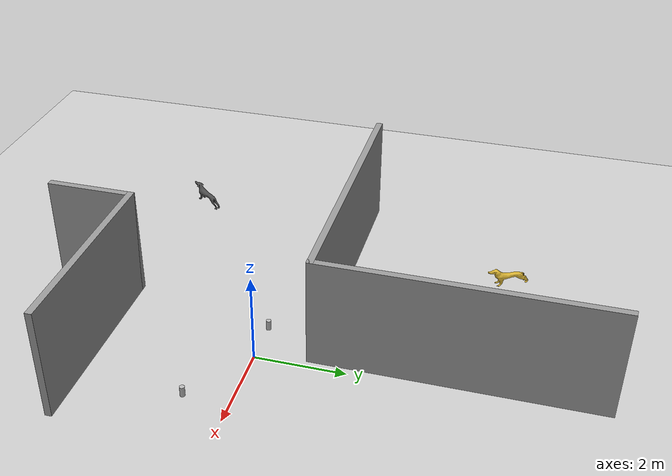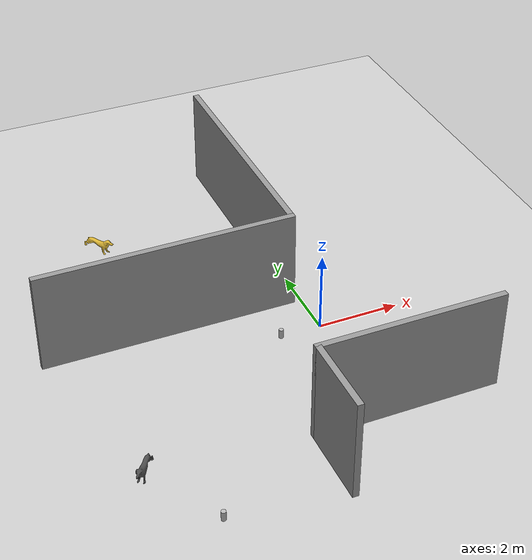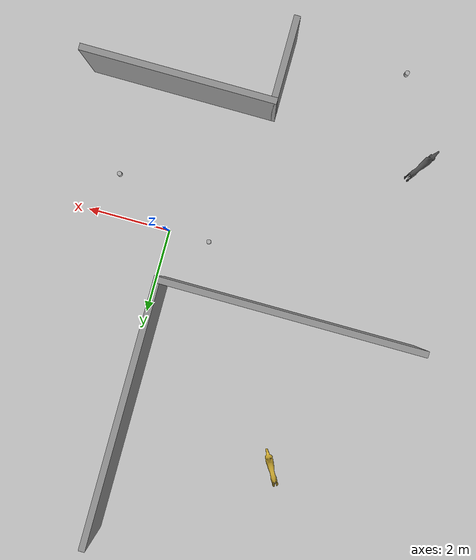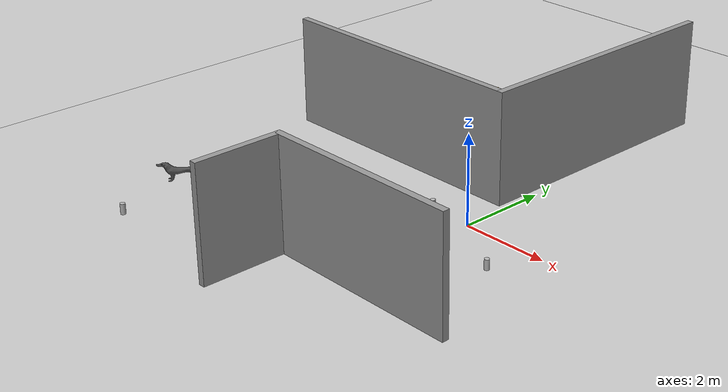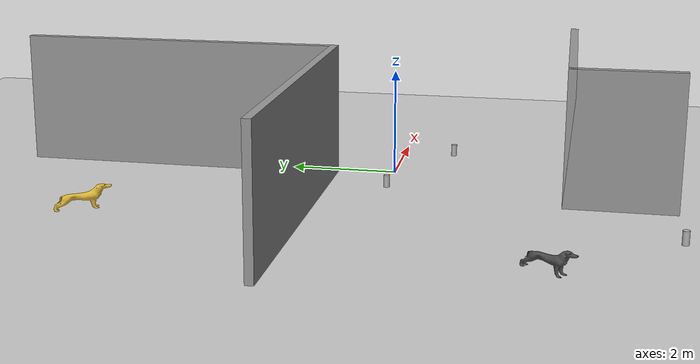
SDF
<sdf version="1.6">
 <world name="demo_world">
  <light name="sun" type="directional">
   <pose>0 0 10 0 -0 0</pose>
   <diffuse>0.8 0.8 0.8 1</diffuse>
   <specular>0.2 0.2 0.2 1</specular>
   <attenuation>
    <range>1000</range>
    <constant>0.9</constant>
    <linear>0.01</linear>
    <quadratic>0.001</quadratic>
   </attenuation>
   <direction>-0.5 0.1 -0.9</direction>
  </light>
  <model name="ground_plane">
   <static>1</static>
   <link name="link">
    <collision name="collision">
     <geometry><plane><normal>0 0 1</normal><size>100 100</size></plane></geometry>
     <surface>
      <contact><collide_bitmask>65535</collide_bitmask></contact>
      <friction><ode><mu>100</mu><mu2>50</mu2></ode></friction>
     </surface>
    </collision>
    <visual name="visual">
     <cast_shadows>0</cast_shadows>
     <geometry><plane><normal>0 0 1</normal><size>100 100</size></plane></geometry>
     <material>
      <script><uri>file://media/materials/scripts/gazebo.material</uri><name>Gazebo/Grey</name></script>
     </material>
    </visual>
   </link>
  </model>
  <gravity>0 0 -9.8</gravity>
  <magnetic_field>6e-06 2.3e-05 -4.2e-05</magnetic_field>
  <atmosphere type="adiabatic"/>
  <physics name="default_physics" default="0" type="ode">
   <max_step_size>0.001</max_step_size>
   <real_time_factor>1</real_time_factor>
   <real_time_update_rate>1000</real_time_update_rate>
  </physics>
  <scene><ambient>0.4 0.4 0.4 1</ambient><background>0.7 0.7 0.7 1</background><shadows>1</shadows></scene>
  <audio><device>default</device></audio>
  <spherical_coordinates>
   <surface_model>EARTH_WGS84</surface_model>
   <latitude_deg>0</latitude_deg>
   <longitude_deg>0</longitude_deg>
   <elevation>0</elevation>
   <heading_deg>90</heading_deg>
  </spherical_coordinates>
  <model name="beer">
   <link name="link">
    <pose>0 0 0.115 0 -0 0</pose>
    <inertial>
     <mass>0.39</mass>
     <inertia><ixx>0.00058</ixx><ixy>0</ixy><ixz>0</ixz><iyy>0.00058</iyy><iyz>0</iyz><izz>0.00019</izz></inertia>
    </inertial>
    <collision name="collision">
     <geometry><cylinder><radius>0.055</radius><length>0.23</length></cylinder></geometry>
    </collision>
    <visual name="visual">
     <geometry><cylinder><radius>0.055</radius><length>0.23</length></cylinder></geometry>
     <material>
      <script>
       <uri>model://beer/materials/scripts</uri>
       <uri>model://beer/materials/textures</uri>
       <name>Beer/Diffuse</name>
      </script>
     </material>
    </visual>
   </link>
   <pose>-4.47 -5.08 0.4 0 -0 0</pose>
  </model>
  <model name="beer1">
   <link name="link">
    <pose>0 0 0.115 0 -0 0</pose>
    <inertial>
     <mass>0.39</mass>
     <inertia><ixx>0.00058</ixx><ixy>0</ixy><ixz>0</ixz><iyy>0.00058</iyy><iyz>0</iyz><izz>0.00019</izz></inertia>
    </inertial>
    <collision name="collision">
     <geometry><cylinder><radius>0.055</radius><length>0.23</length></cylinder></geometry>
    </collision>
    <visual name="visual">
     <geometry><cylinder><radius>0.055</radius><length>0.23</length></cylinder></geometry>
     <material>
      <script>
       <uri>model://beer/materials/scripts</uri>
       <uri>model://beer/materials/textures</uri>
       <name>Beer/Diffuse</name>
      </script>
     </material>
    </visual>
   </link>
   <pose>-1 0 0 0 -0 0</pose>
  </model>
  <model name="beer2">
   <link name="link">
    <pose>0 0 0.115 0 -0 0</pose>
    <inertial>
     <mass>0.39</mass>
     <inertia><ixx>0.00058</ixx><ixy>0</ixy><ixz>0</ixz><iyy>0.00058</iyy><iyz>0</iyz><izz>0.00019</izz></inertia>
    </inertial>
    <collision name="collision">
     <geometry><cylinder><radius>0.055</radius><length>0.23</length></cylinder></geometry>
    </collision>
    <visual name="visual">
     <geometry><cylinder><radius>0.055</radius><length>0.23</length></cylinder></geometry>
     <material>
      <script>
       <uri>model://beer/materials/scripts</uri>
       <uri>model://beer/materials/textures</uri>
       <name>Beer/Diffuse</name>
      </script>
     </material>
    </visual>
   </link>
   <pose>1.5 -1 0 0 -0 0</pose>
  </model>
  <model name="dog">
   <link name="link_0">
    <inertial>
     <mass>1</mass>
     <inertia>
      <ixx>0.166667</ixx>
      <ixy>0</ixy>
      <ixz>0</ixz>
      <iyy>0.166667</iyy>
      <iyz>0</iyz>
      <izz>0.166667</izz>
     </inertia>
    </inertial>
    <pose>-0 -0 0 1.55957 -0 0</pose>
    <visual name="visual">
     <geometry><mesh><uri>model://objects/dog.dae</uri><scale>0.00013 0.0001 0.0002</scale></mesh></geometry>
     <material>
      <lighting>1</lighting>
      <script><uri>file://media/materials/scripts/gazebo.material</uri><name>Gazebo/DarkGrey</name></script>
      <shader type="vertex"><normal_map>__default__</normal_map></shader>
     </material>
    </visual>
    <collision name="collision">
     <geometry><mesh><uri>model://objects/dog.dae</uri><scale>0.00013 0.0001 0.0002</scale></mesh></geometry>
     <surface>
      <friction>
       <ode><mu>1</mu><mu2>1</mu2><fdir1>0 0 0</fdir1><slip1>0</slip1><slip2>0</slip2></ode>
       <torsional>
        <coefficient>1</coefficient>
        <patch_radius>0</patch_radius>
        <surface_radius>0</surface_radius>
        <use_patch_radius>1</use_patch_radius>
        <ode><slip>0</slip></ode>
       </torsional>
      </friction>
      <bounce><restitution_coefficient>0</restitution_coefficient><threshold>1e+06</threshold></bounce>
      <contact>
       <collide_without_contact>0</collide_without_contact>
       <collide_without_contact_bitmask>1</collide_without_contact_bitmask>
       <collide_bitmask>1</collide_bitmask>
       <ode>
        <soft_cfm>0</soft_cfm>
        <soft_erp>0.2</soft_erp>
        <kp>1e+13</kp>
        <kd>1</kd>
        <max_vel>0.01</max_vel>
        <min_depth>0</min_depth>
       </ode>
       <bullet>
        <split_impulse>1</split_impulse>
        <split_impulse_penetration_threshold>-0.01</split_impulse_penetration_threshold>
        <soft_cfm>0</soft_cfm>
        <soft_erp>0.2</soft_erp>
        <kp>1e+13</kp>
        <kd>1</kd>
       </bullet>
      </contact>
     </surface>
    </collision>
   </link>
   <static>1</static>
   <pose>-5.5 -3 0.25 0 -0 -0.6</pose>
  </model>
  <model name="dog1">
   <link name="link_0">
    <inertial>
     <mass>1</mass>
     <inertia>
      <ixx>0.166667</ixx>
      <ixy>0</ixy>
      <ixz>0</ixz>
      <iyy>0.166667</iyy>
      <iyz>0</iyz>
      <izz>0.166667</izz>
     </inertia>
    </inertial>
    <pose>-0 -0 0 1.55957 -0 0</pose>
    <visual name="visual">
     <geometry><mesh><uri>model://objects/dog.dae</uri><scale>0.00013 0.0001 0.0002</scale></mesh></geometry>
     <material>
      <lighting>1</lighting>
      <script><uri>file://media/materials/scripts/gazebo.material</uri><name>Gazebo/Gold</name></script>
      <shader type="vertex"><normal_map>__default__</normal_map></shader>
     </material>
    </visual>
    <collision name="collision">
     <geometry><mesh><uri>model://objects/dog.dae</uri><scale>0.00013 0.0001 0.0002</scale></mesh></geometry>
     <surface>
      <friction>
       <ode><mu>1</mu><mu2>1</mu2><fdir1>0 0 0</fdir1><slip1>0</slip1><slip2>0</slip2></ode>
       <torsional>
        <coefficient>1</coefficient>
        <patch_radius>0</patch_radius>
        <surface_radius>0</surface_radius>
        <use_patch_radius>1</use_patch_radius>
        <ode><slip>0</slip></ode>
       </torsional>
      </friction>
      <bounce><restitution_coefficient>0</restitution_coefficient><threshold>1e+06</threshold></bounce>
      <contact>
       <collide_without_contact>0</collide_without_contact>
       <collide_without_contact_bitmask>1</collide_without_contact_bitmask>
       <collide_bitmask>1</collide_bitmask>
       <ode>
        <soft_cfm>0</soft_cfm>
        <soft_erp>0.2</soft_erp>
        <kp>1e+13</kp>
        <kd>1</kd>
        <max_vel>0.01</max_vel>
        <min_depth>0</min_depth>
       </ode>
       <bullet>
        <split_impulse>1</split_impulse>
        <split_impulse_penetration_threshold>-0.01</split_impulse_penetration_threshold>
        <soft_cfm>0</soft_cfm>
        <soft_erp>0.2</soft_erp>
        <kp>1e+13</kp>
        <kd>1</kd>
       </bullet>
      </contact>
     </surface>
    </collision>
   </link>
   <static>1</static>
   <pose>-4 4.77 0.25 0 -0 0.5</pose>
  </model>
  <model name="Untitled">
   <pose>-1.82907 1.05465 0 0 -0 0</pose>
   <link name="Wall_0">
    <collision name="Wall_0_Collision">
     <geometry><box><size>6.25 0.15 2.5</size></box></geometry>
     <pose>0 0 1.25 0 -0 0</pose>
    </collision>
    <visual name="Wall_0_Visual">
     <pose>0 0 1.25 0 -0 0</pose>
     <geometry><box><size>6.25 0.15 2.5</size></box></geometry>
     <material>
      <script><uri>file://media/materials/scripts/gazebo.material</uri><name>Gazebo/Grey</name></script>
      <ambient>1 1 1 1</ambient>
     </material>
     <meta><layer>0</layer></meta>
    </visual>
    <pose>-1.4632 0.105746 0 0 -0 3.14159</pose>
   </link>
   <link name="Wall_2">
    <collision name="Wall_2_Collision">
     <geometry><box><size>4.5 0.15 2.5</size></box></geometry>
     <pose>0 0 1.25 0 -0 0</pose>
    </collision>
    <visual name="Wall_2_Visual">
     <pose>0 0 1.25 0 -0 0</pose>
     <geometry><box><size>4.5 0.15 2.5</size></box></geometry>
     <material>
      <script><uri>file://media/materials/scripts/gazebo.material</uri><name>Gazebo/Grey</name></script>
      <ambient>1 1 1 1</ambient>
     </material>
     <meta><layer>0</layer></meta>
    </visual>
    <pose>2.3382 -4.35575 0 0 -0 0</pose>
   </link>
   <link name="Wall_4">
    <collision name="Wall_4_Collision">
     <geometry><box><size>2 0.15 2.5</size></box></geometry>
     <pose>0 0 1.25 0 -0 0</pose>
    </collision>
    <visual name="Wall_4_Visual">
     <pose>0 0 1.25 0 -0 0</pose>
     <geometry><box><size>2 0.15 2.5</size></box></geometry>
     <material>
      <script><uri>file://media/materials/scripts/gazebo.material</uri><name>Gazebo/Grey</name></script>
      <ambient>1 1 1 1</ambient>
     </material>
     <meta><layer>0</layer></meta>
    </visual>
    <pose>0.163197 -5.28075 0 0 -0 -1.5708</pose>
   </link>
   <link name="Wall_6">
    <collision name="Wall_6_Collision">
     <geometry><box><size>6.25 0.15 2.5</size></box></geometry>
     <pose>0 0 1.25 0 -0 0</pose>
    </collision>
    <visual name="Wall_6_Visual">
     <pose>0 0 1.25 0 -0 0</pose>
     <geometry><box><size>6.25 0.15 2.5</size></box></geometry>
     <material>
      <script><uri>file://media/materials/scripts/gazebo.material</uri><name>Gazebo/Grey</name></script>
      <ambient>1 1 1 1</ambient>
     </material>
     <meta><layer>0</layer></meta>
    </visual>
    <pose>1.5868 3.15575 0 0 -0 1.5708</pose>
   </link>
   <static>1</static>
  </model>
 </world>
</sdf>
